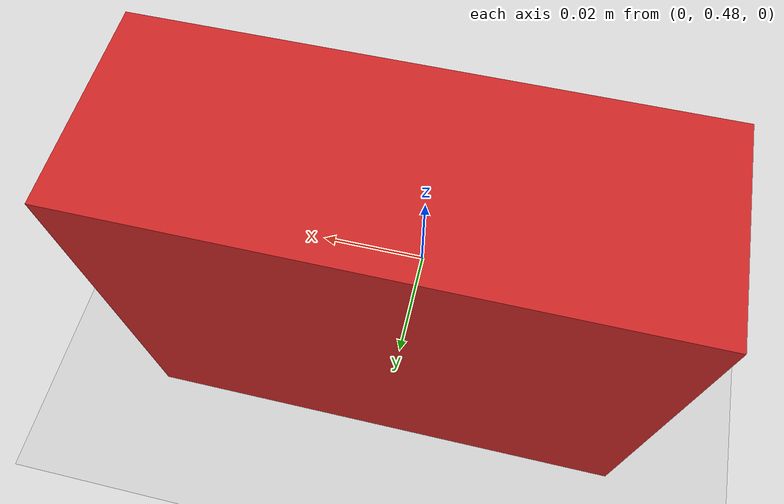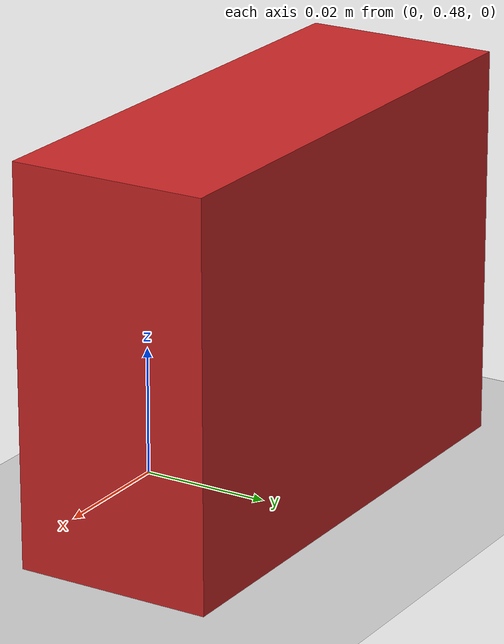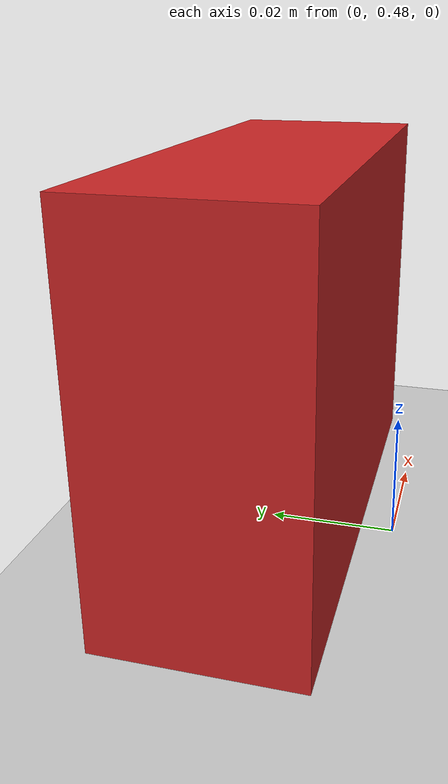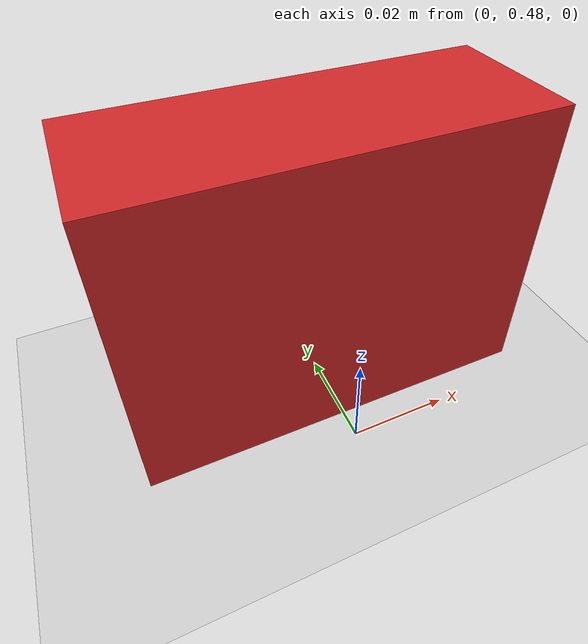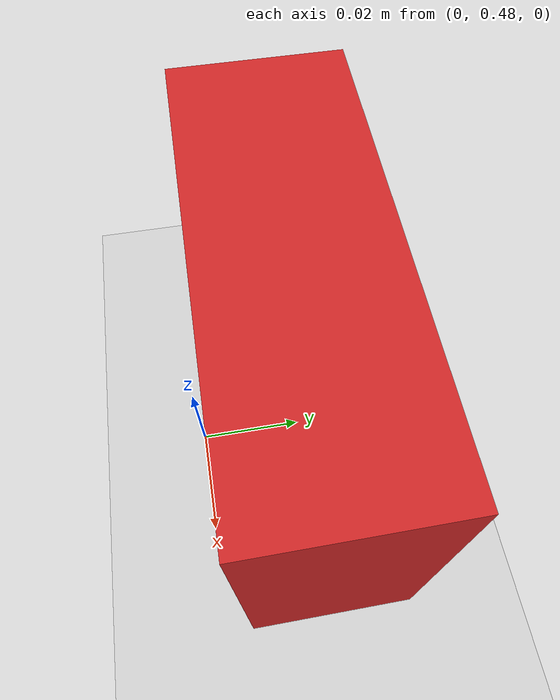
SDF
<?xml version="1.0" ?>
<sdf version='1.7'>

  <world name='default'>

    <include>
      <uri>model://ground_plane</uri>
    </include>

    <model name='box'>
      <pose>0 0.5 0.031 0 -0 0</pose>
      <link name='link'>
        <inertial>
          <mass>0.006</mass>
          <inertia>
            <ixx>1.6667e-6</ixx>
            <ixy>0</ixy>
            <ixz>0</ixz>
            <iyy>1.6667e-6</iyy>
            <iyz>0</iyz>
            <izz>1.6667e-6</izz>
          </inertia>
          <pose>0 0 0 0 -0 0</pose>
        </inertial>
        <collision name='collision'>
          <geometry>
            <box>
              <size>0.08 0.036 0.06</size>
            </box>
          </geometry>
          <surface>
            <friction>
              <ode>
                <mu>500000</mu>
                <mu2>500000</mu2>
                <slip1>0.0</slip1>
                <slip2>0.0</slip2>
              </ode>
            </friction>
            <contact>
              <ode>
                <max_vel>0.0</max_vel>
                <min_depth>0.001</min_depth>
                <kp>1e15</kp>
                <kd>1e13</kd>
              </ode>
            </contact>
          </surface>
        </collision>
        <visual name='visual'>
          <geometry>
            <box>
              <size>0.08 0.030 0.06</size>
            </box>
          </geometry>
          <material>
            <script>
              <name>Gazebo/Red</name>
              <uri>file://media/materials/scripts/gazebo.material</uri>
            </script>
          </material>
        </visual>
        <self_collide>0</self_collide>
        <enable_wind>0</enable_wind>
        <kinematic>0</kinematic>
      </link>
    </model>

    <light name='sun1' type='directional'>
      <cast_shadows>0</cast_shadows>
      <pose>0 0 10 0 0 0</pose>
      <diffuse>0.8 0.8 0.8 1</diffuse>
      <specular>0.2 0.2 0.2 1</specular>
      <attenuation>
        <range>1000</range>
        <constant>0.9</constant>
        <linear>0.01</linear>
        <quadratic>0.001</quadratic>
      </attenuation>
      <direction>-1 -1 -1</direction>
    </light>
    <light name='sun2' type='directional'>
      <cast_shadows>0</cast_shadows>
      <pose>0 0 10 0 0 0</pose>
      <diffuse>0.8 0.8 0.8 1</diffuse>
      <specular>0.2 0.2 0.2 1</specular>
      <attenuation>
        <range>1000</range>
        <constant>0.9</constant>
        <linear>0.01</linear>
        <quadratic>0.001</quadratic>
      </attenuation>
      <direction>1 -1 -1</direction>
    </light>
    <light name='sun3' type='directional'>
      <cast_shadows>0</cast_shadows>
      <pose>0 0 10 0 0 0</pose>
      <diffuse>0.8 0.8 0.8 1</diffuse>
      <specular>0.2 0.2 0.2 1</specular>
      <attenuation>
        <range>1000</range>
        <constant>0.9</constant>
        <linear>0.01</linear>
        <quadratic>0.001</quadratic>
      </attenuation>
      <direction>-1 1 -1</direction>
    </light>
    <light name='sun4' type='directional'>
      <cast_shadows>0</cast_shadows>
      <pose>0 0 10 0 0 0</pose>
      <diffuse>0.8 0.8 0.8 1</diffuse>
      <specular>0.2 0.2 0.2 1</specular>
      <attenuation>
        <range>1000</range>
        <constant>0.9</constant>
        <linear>0.01</linear>
        <quadratic>0.001</quadratic>
      </attenuation>
      <direction>1 1 -1</direction>
    </light>

    <physics type='ode'>
      <max_step_size>0.001</max_step_size>
      <real_time_factor>1</real_time_factor>
      <real_time_update_rate>1000</real_time_update_rate>
    </physics>

    <scene>
      <ambient>255 255 255 1</ambient>
      <background>0.7 0.7 0.7 1</background>
      <shadows>0</shadows>
    </scene>

    <gui fullscreen='0'>
      <camera name='user_camera'>
        <pose>-2 3.5 2 0 0.4 -1</pose>
        <view_controller>orbit</view_controller>
        <projection_type>perspective</projection_type>
      </camera>
    </gui>
  </world>
</sdf>
